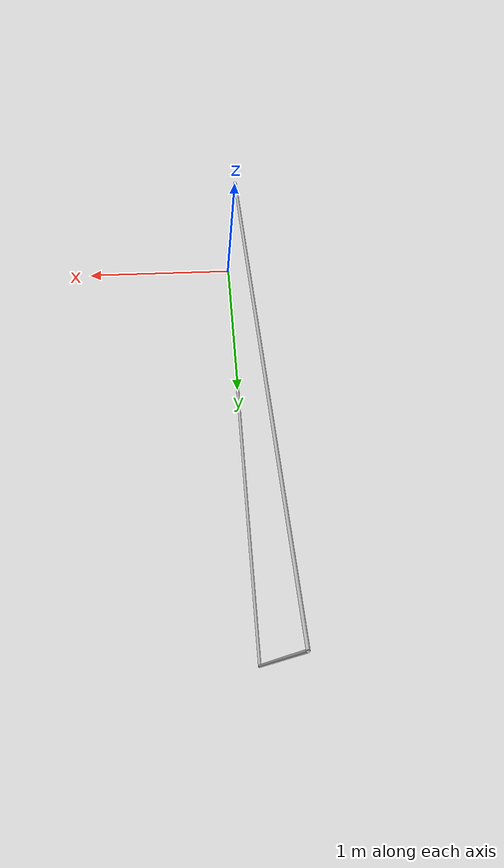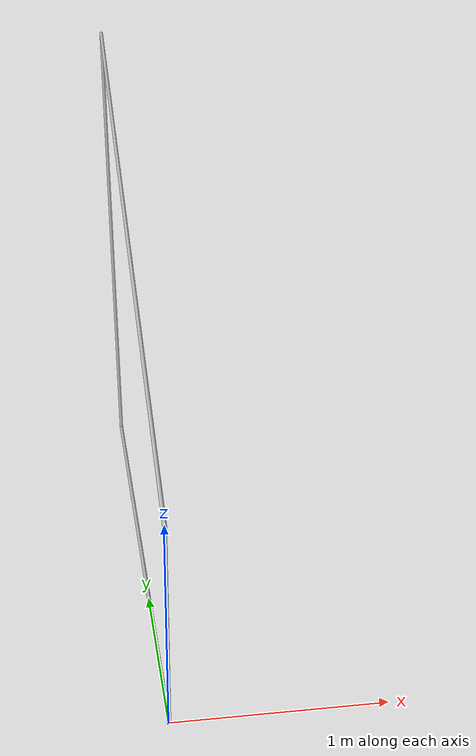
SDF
<sdf version='1.7'>
  <model name='four_body_linkage'>
    <joint name='world2base' type='fixed'>
      <pose relative_to='__model__'>0 0 0 0 -0 0</pose>
      <parent>world</parent>
      <child>base_link</child>
    </joint>
    <link name='base_link'>
      <pose relative_to='world2base'>0 1.5 0 -1.5708 -0 0</pose>
      <inertial>
        <pose>0 0 0 0 -0 0</pose>
        <mass>1</mass>
        <inertia>
          <ixx>1</ixx>
          <ixy>0</ixy>
          <ixz>0</ixz>
          <iyy>1</iyy>
          <iyz>0</iyz>
          <izz>1</izz>
        </inertia>
      </inertial>
      <collision name='base_link_collision'>
        <pose>0 0 0 0 -0 0</pose>
        <geometry>
          <cylinder>
            <radius>0.01</radius>
            <length>3</length>
          </cylinder>
        </geometry>
      </collision>
      <visual name='base_link_visual'>
        <pose>0 0 0 0 -0 0</pose>
        <geometry>
          <cylinder>
            <radius>0.01</radius>
            <length>3</length>
          </cylinder>
        </geometry>
      </visual>
    </link>

    <joint name='joint1' type='revolute'>
      <pose relative_to='base_link'>0 0 -1.5 1.578 -0 0</pose>
      <parent>base_link</parent>
      <child>link_1</child>
      <axis>
        <xyz>1 0 0</xyz>
      </axis>
    </joint>

    <link name='link_1'>
      <pose relative_to='joint1'>0 0 0 0 -0 0</pose>
      <inertial>
        <pose>0 0 0.5 0 -0 0</pose>
        <mass>1</mass>
        <inertia>
          <ixx>0.0833</ixx>
          <ixy>0</ixy>
          <ixz>0</ixz>
          <iyy>0.0833</iyy>
          <iyz>0</iyz>
          <izz>0.00005</izz>
        </inertia>
      </inertial>
      <visual name='link_1'>
        <pose>0 0 0.5 0 -0 0</pose>
        <geometry>
          <cylinder>
            <radius>0.01</radius>
            <length>1</length>
          </cylinder>
        </geometry>
      </visual>
    </link>

    <joint name='joint2' type='revolute'>
      <pose relative_to='link_1'>0 0 1.0 -1.2247 -0 0</pose>
      <parent>link_1</parent>
      <child>link_2</child>
      <axis>
        <xyz>1 0 0</xyz>
      </axis>
    </joint>
    <link name='link_2'>
      <pose relative_to='joint2'>0 0 0 0 -0 0</pose>
      <inertial>
        <pose>0 0 2.0 0 -0 0</pose>
        <mass>4</mass>
        <inertia>
          <ixx>5.333</ixx>
          <ixy>0</ixy>
          <ixz>0</ixz>
          <iyy>5.333</iyy>
          <iyz>0</iyz>
          <izz>0.0002</izz>
        </inertia>
      </inertial>
      <visual name='link_2'>
        <pose>0 0 2.0 0 -0 0</pose>
        <geometry>
          <cylinder>
            <radius>0.01</radius>
            <length>4</length>
          </cylinder>
        </geometry>
      </visual>
    </link>

    <joint name='joint3' type='revolute'>
      <pose relative_to='link_2'>0 0 4.0 0.9116 -0 0</pose>
      <parent>link_2</parent>
      <child>link_3</child>
      <axis>
        <xyz>1 0 0</xyz>
      </axis>
    </joint>

    <link name='link_3'>
      <pose relative_to='joint3'>0 0 0 0 -0 0</pose>
      <inertial>
        <pose>0 0 -1.25 0 -0 0</pose>
        <mass>2.5</mass>
        <inertia>
          <ixx>1.302</ixx>
          <ixy>0</ixy>
          <ixz>0</ixz>
          <iyy>1.302</iyy>
          <iyz>0</iyz>
          <izz>0.000125</izz>
        </inertia>
      </inertial>
      <visual name='link_3'>
        <pose>0 0 -1.25 0 -0 0</pose>
        <geometry>
          <cylinder>
            <radius>0.01</radius>
            <length>2.5</length>
          </cylinder>
        </geometry>
      </visual>
    </link>

    <joint name='joint4' type='revolute'>
      <pose relative_to='base_link'>0 0 1.5 1.2649 -0 0</pose>
      <parent>base_link</parent>
      <child>link_3</child>
      <axis>
        <xyz>1 0 0</xyz>
      </axis>
    </joint>

  </model>
</sdf>
